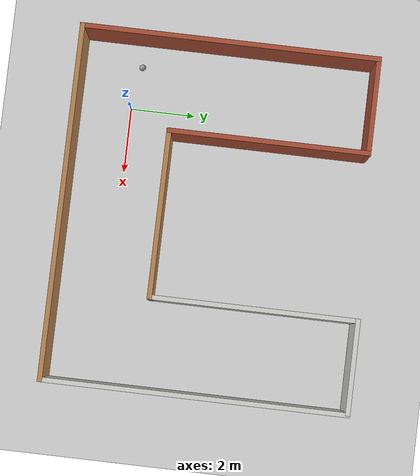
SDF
<sdf version="1.6">
 <world name="default">
  <light name="sun" type="directional">
   <pose>0 0 15 0 -0 0</pose>
   <diffuse>1 1 1 1</diffuse>
   <specular>0.1 0.1 0.1 1</specular>
   <attenuation>
    <range>1000</range>
    <constant>0.9</constant>
    <linear>0.01</linear>
    <quadratic>0.001</quadratic>
   </attenuation>
   <direction>-0.5 0.5 -1</direction>
  </light>
  <model name="ground_plane">
   <static>1</static>
   <link name="link">
    <collision name="collision">
     <geometry><plane><normal>0 0 1</normal><size>100 100</size></plane></geometry>
     <surface><friction><ode><mu>100</mu><mu2>50</mu2></ode></friction></surface>
    </collision>
    <visual name="visual">
     <transparency>1</transparency>
     <cast_shadows>0</cast_shadows>
     <geometry><plane><normal>0 0 1</normal><size>100 100</size></plane></geometry>
     <material>
      <script><uri>file://media/materials/scripts/gazebo.material</uri><name>Gazebo/Grey</name></script>
     </material>
    </visual>
   </link>
  </model>
  <gravity>0 0 -9.8</gravity>
  <magnetic_field>6e-06 2.3e-05 -4.2e-05</magnetic_field>
  <atmosphere type="adiabatic"/>
  <physics name="default_physics" default="0" type="ode">
   <max_step_size>0.001</max_step_size>
   <real_time_factor>1</real_time_factor>
   <real_time_update_rate>1000</real_time_update_rate>
  </physics>
  <scene><ambient>0.4 0.4 0.4 1</ambient><background>0.7 0.7 0.7 1</background><shadows>1</shadows></scene>
  <spherical_coordinates>
   <surface_model>EARTH_WGS84</surface_model>
   <latitude_deg>0</latitude_deg>
   <longitude_deg>0</longitude_deg>
   <elevation>0</elevation>
   <heading_deg>0</heading_deg>
  </spherical_coordinates>
  <model name="HomeServiceCorridor">
   <pose>3.30067 3.01831 0 0 -0 0</pose>
   <link name="Wall_1">
    <collision name="Wall_1_Collision">
     <geometry><box><size>9.25 0.15 2.5</size></box></geometry>
     <pose>0 0 1.25 0 -0 0</pose>
    </collision>
    <visual name="Wall_1_Visual">
     <pose>0 0 1.25 0 -0 0</pose>
     <geometry><box><size>9.25 0.15 2.5</size></box></geometry>
     <material>
      <script><uri>file://media/materials/scripts/gazebo.material</uri><name>Gazebo/Bricks</name></script>
      <ambient>1 1 1 1</ambient>
     </material>
    </visual>
    <pose>-5.425 -0.125 0 0 0 -1.5708</pose>
   </link>
   <link name="Wall_2">
    <collision name="Wall_2_Collision">
     <geometry><box><size>11 0.15 2.5</size></box></geometry>
     <pose>0 0 1.25 0 -0 0</pose>
    </collision>
    <visual name="Wall_2_Visual">
     <pose>0 0 1.25 0 -0 0</pose>
     <geometry><box><size>11 0.15 2.5</size></box></geometry>
     <material>
      <script><uri>file://media/materials/scripts/gazebo.material</uri><name>Gazebo/Wood</name></script>
      <ambient>1 1 1 1</ambient>
     </material>
    </visual>
    <pose>0 -4.675 0 0 -0 0</pose>
   </link>
   <link name="Wall_3">
    <collision name="Wall_3_Collision">
     <geometry><box><size>9.5 0.15 2.5</size></box></geometry>
     <pose>0 0 1.25 0 -0 0</pose>
    </collision>
    <visual name="Wall_3_Visual">
     <pose>0 0 1.25 0 -0 0</pose>
     <geometry><box><size>9.5 0.15 2.5</size></box></geometry>
     <material>
      <script><uri>file://media/materials/scripts/gazebo.material</uri><name>Gazebo/CeilingTiled</name></script>
      <ambient>1 1 1 1</ambient>
     </material>
    </visual>
    <pose>5.425 0 0 0 -0 1.5708</pose>
   </link>
   <link name="Wall_4">
    <collision name="Wall_4_Collision">
     <geometry><box><size>3 0.15 2.5</size></box></geometry>
     <pose>0 0 1.25 0 -0 0</pose>
    </collision>
    <visual name="Wall_4_Visual">
     <pose>0 0 1.25 0 -0 0</pose>
     <geometry><box><size>3 0.15 2.5</size></box></geometry>
     <material>
      <script><uri>file://media/materials/scripts/gazebo.material</uri><name>Gazebo/CeilingTiled</name></script>
      <ambient>1 1 1 1</ambient>
     </material>
    </visual>
    <pose>4 4.675 0 0 -0 3.14159</pose>
   </link>
   <link name="Wall_5">
    <collision name="Wall_5_Collision">
     <geometry><box><size>6.5 0.15 2.5</size></box></geometry>
     <pose>0 0 1.25 0 -0 0</pose>
    </collision>
    <visual name="Wall_5_Visual">
     <pose>0 0 1.25 0 -0 0</pose>
     <geometry><box><size>6.5 0.15 2.5</size></box></geometry>
     <material>
      <script><uri>file://media/materials/scripts/gazebo.material</uri><name>Gazebo/CeilingTiled</name></script>
      <ambient>1 1 1 1</ambient>
     </material>
    </visual>
    <pose>2.575 1.5 0 0 0 -1.5708</pose>
   </link>
   <link name="Wall_6">
    <collision name="Wall_6_Collision">
     <geometry><box><size>5.25 0.15 2.5</size></box></geometry>
     <pose>0 0 1.25 0 -0 0</pose>
    </collision>
    <visual name="Wall_6_Visual">
     <pose>0 0 1.25 0 -0 0</pose>
     <geometry><box><size>5.25 0.15 2.5</size></box></geometry>
     <material>
      <script><uri>file://media/materials/scripts/gazebo.material</uri><name>Gazebo/Wood</name></script>
      <ambient>1 1 1 1</ambient>
     </material>
    </visual>
    <pose>0.025 -1.675 0 0 -0 3.14159</pose>
   </link>
   <link name="Wall_7">
    <collision name="Wall_7_Collision">
     <geometry><box><size>6.25 0.15 2.5</size></box></geometry>
     <pose>0 0 1.25 0 -0 0</pose>
    </collision>
    <visual name="Wall_7_Visual">
     <pose>0 0 1.25 0 -0 0</pose>
     <geometry><box><size>6.25 0.15 2.5</size></box></geometry>
     <material>
      <script><uri>file://media/materials/scripts/gazebo.material</uri><name>Gazebo/Bricks</name></script>
      <ambient>1 1 1 1</ambient>
     </material>
    </visual>
    <pose>-2.525 1.375 0 0 -0 1.5708</pose>
   </link>
   <link name="Wall_8">
    <collision name="Wall_8_Collision">
     <geometry><box><size>3.05 0.15 2.5</size></box></geometry>
     <pose>0 0 1.25 0 -0 0</pose>
    </collision>
    <visual name="Wall_8_Visual">
     <pose>0 0 1.25 0 -0 0</pose>
     <geometry><box><size>3.05 0.15 2.5</size></box></geometry>
     <material>
      <script><uri>file://media/materials/scripts/gazebo.material</uri><name>Gazebo/Bricks</name></script>
      <ambient>1 1 1 1</ambient>
     </material>
    </visual>
    <pose>-3.975 4.425 0 0 -0 3.14159</pose>
   </link>
   <static>1</static>
  </model>
  <model name="Ball">
   <link name="link_0">
    <inertial>
     <mass>1</mass>
     <inertia><ixx>0.1</ixx><ixy>0</ixy><ixz>0</ixz><iyy>0.1</iyy><iyz>0</iyz><izz>0.1</izz></inertia>
    </inertial>
    <gravity>0</gravity>
    <visual name="visual">
     <geometry><sphere><radius>0.1</radius></sphere></geometry>
     <material>
      <lighting>0</lighting>
      <script><uri>file://media/materials/scripts/gazebo.material</uri><name>Gazebo/Grey</name></script>
      <ambient>1 1 1 1</ambient>
      <diffuse>1 1 1 1</diffuse>
      <specular>1 1 1 1</specular>
      <emissive>1 1 1 1</emissive>
      <shader type="vertex"><normal_map>__default__</normal_map></shader>
     </material>
    </visual>
    <collision name="collision">
     <geometry><sphere><radius>0.09</radius></sphere></geometry>
     <surface>
      <friction>
       <ode><mu>1</mu><mu2>1</mu2><fdir1>0 0 0</fdir1><slip1>0</slip1><slip2>0</slip2></ode>
       <torsional>
        <coefficient>1</coefficient>
        <patch_radius>0</patch_radius>
        <surface_radius>0</surface_radius>
        <use_patch_radius>1</use_patch_radius>
        <ode><slip>0</slip></ode>
       </torsional>
      </friction>
      <bounce><restitution_coefficient>0</restitution_coefficient><threshold>1e+06</threshold></bounce>
      <contact>
       <collide_without_contact>0</collide_without_contact>
       <collide_without_contact_bitmask>1</collide_without_contact_bitmask>
       <collide_bitmask>1</collide_bitmask>
       <ode>
        <soft_cfm>0</soft_cfm>
        <soft_erp>0.2</soft_erp>
        <kp>1e+13</kp>
        <kd>1</kd>
        <max_vel>0.01</max_vel>
        <min_depth>0</min_depth>
       </ode>
       <bullet>
        <split_impulse>1</split_impulse>
        <split_impulse_penetration_threshold>-0.01</split_impulse_penetration_threshold>
        <soft_cfm>0</soft_cfm>
        <soft_erp>0.2</soft_erp>
        <kp>1e+13</kp>
        <kd>1</kd>
       </bullet>
      </contact>
     </surface>
    </collision>
   </link>
   <static>0</static>
   <pose>-1.27428 0.227917 0.619955 0 -0 0</pose>
  </model>
 </world>
</sdf>
